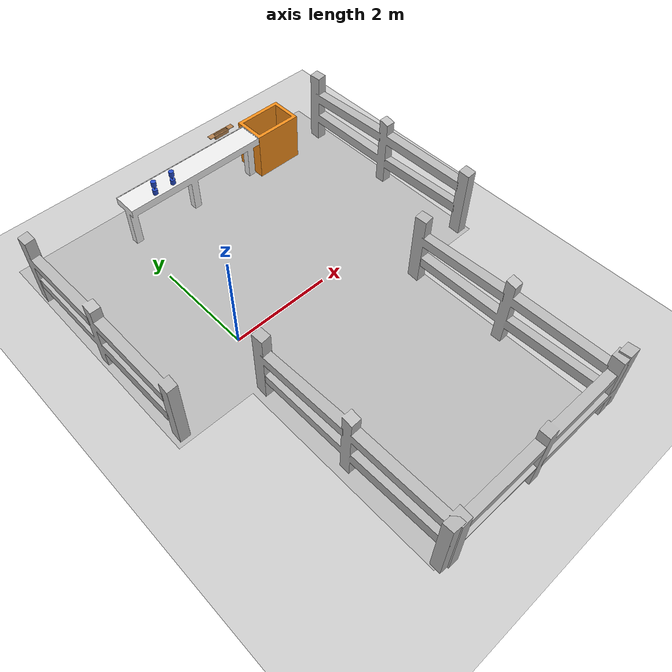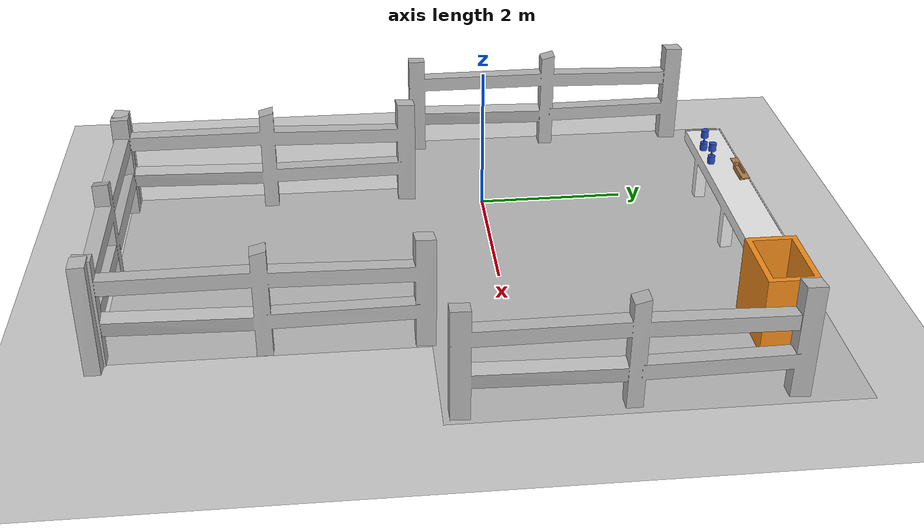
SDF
<sdf version="1.6">
 <world name="default">
  <max_step_size>0.001</max_step_size>
  <real_time_update_rate>1000</real_time_update_rate>
  <iters>50</iters>
  <scene>
   <sky><clouds><speed>12</speed></clouds></sky>
   <grid>false</grid>
   <origin_visual>false</origin_visual>
  </scene>
  <include><uri>model://sun</uri></include>
  <include><uri>model://ground_plane</uri></include>
  <physics type="ode">
   <max_step_size>0.001</max_step_size>
   <real_time_factor>1</real_time_factor>
   <real_time_update_rate>1000.0</real_time_update_rate>
   <gravity>0 0 -9.8</gravity>
   <solver><iters>500</iters><sor>1.3</sor></solver>
   <constraints><cfm>0.0</cfm><erp>0.2</erp></constraints>
  </physics>
  <include><name>Table1</name><uri>model://Table</uri><pose>0 2.965688 0 0 0 0</pose></include>
  <include>
   <name>Box_red</name>
   <uri>model://Box_red</uri>
   <pose>3.35089 3.26 -0.09 0 -0 3.14159265359</pose>
  </include>
  <include><name>D1_blue</name><uri>model://D1_blue</uri><pose>0.6 3.02 1.151 0 -0 0</pose></include>
  <include><name>D2_blue</name><uri>model://D1_blue</uri><pose>1.0 3.02 1.151 0 -0 0</pose></include>
  <model name="tray0">
   <static>false</static>
   <pose>2.2 3.02 1.5 0 -0 0</pose>
   <link name="link">
    <inertial>
     <mass>0.2</mass>
     <inertia>
      <ixx>0.00113</ixx>
      <ixy>0.0</ixy>
      <ixz>0.0</ixz>
      <iyy>0.01718</iyy>
      <iyz>0.0</iyz>
      <izz>0.01854</izz>
     </inertia>
    </inertial>
    <visual name="visual">
     <geometry><mesh><uri>model://aidal_moveit_config/meshes/tray.stl</uri></mesh></geometry>
     <material><script><name>Gazebo/Wood</name></script></material>
    </visual>
    <collision name="collision">
     <geometry><mesh><uri>model://aidal_moveit_config/meshes/tray.stl</uri></mesh></geometry>
     <surface>
      <friction><ode><mu>0.8</mu><mu2>0.8</mu2></ode></friction>
      <contact><ode><kp>1e5</kp><kd>1.0</kd><max_vel>0.1</max_vel><min_depth>0.001</min_depth></ode></contact>
     </surface>
    </collision>
   </link>
  </model>
  <include><name>floor</name><uri>model://floor</uri><pose>3 3 4.503 -1.57079632679 0 0</pose></include>
  <include><name>fence1</name><uri>model://fence</uri><pose>3.695756 -4.926656 0 0 0 -1.950725</pose></include>
  <include><name>fence2</name><uri>model://fence</uri><pose>-0.367325 -0.953713 0 0 0 -0.361621</pose></include>
  <include><name>fence3</name><uri>model://fence</uri><pose>3.286430 -0.953713 0 0 0 -0.361621</pose></include>
  <include><name>fence4</name><uri>model://fence</uri><pose>-1.954880 3.245640 0 0 0 -0.361621</pose></include>
  <include><name>fence5</name><uri>model://fence</uri><pose>4.694280 3.245640 0 0 0 -0.361621</pose></include>
 </world>
</sdf>

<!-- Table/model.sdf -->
<sdf version="1.6">
  <model name="Table">
  <static>true</static>
  <pose>0 0 0 0 0 0</pose>
    <link name="Table">
      <pose>0 0 0 0 0 0</pose>
      <visual name="Table_visual">
        <geometry><mesh><uri>model://Table/meshes/Table.stl</uri></mesh></geometry>
        <material>
        <script>
          <uri>file://media/materials/scripts/gazebo.material</uri>
          <name>Gazebo/White</name>
        </script>
        </material>
      </visual>
      <collision name="Table_collision">
        <geometry><mesh><uri>model://Table/meshes/Table.stl</uri></mesh></geometry>
      </collision>
    </link>

  </model>
</sdf>

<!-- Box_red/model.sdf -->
<sdf version="1.7">
  <model name="Box_red">
  <static>true</static>
  <pose>0 0 0 0 0 0</pose>
    <link name="Box_red">
      <pose>0 0 0 0 0 0</pose>
      <visual name="Box_red_visual">
        <geometry><mesh><uri>model://Box_red/meshes/Box.stl</uri></mesh></geometry>
        <material>
        <script>
          <uri>file://media/materials/scripts/gazebo.material</uri>
          <name>Gazebo/Orange</name>
        </script>
        </material>
      </visual>
      <collision name="Box_red_collision">
        <geometry><mesh><uri>model://Box_red/meshes/Box.stl</uri></mesh></geometry>
      </collision>
    </link>

  </model>
</sdf>

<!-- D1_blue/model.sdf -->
<sdf version="1.6">
  <model name="D1_blue">
  <pose>0 0 0 0 0 0</pose>
    <link name="D1_blue">
      <pose>0 0 0 0 0 0</pose>
      <visual name="D1_blue_visual">
        <geometry><mesh><uri>model://D1_blue/meshes/D1.stl</uri></mesh></geometry>
        <material>
        <script>
          <uri>file://media/materials/scripts/gazebo.material</uri>
          <name>Gazebo/Blue</name>
        </script>
        </material>
      </visual>
      <collision name="D1_blue_collision">

        <geometry><mesh><uri>model://D1_blue/meshes/D1.stl</uri></mesh></geometry>

        <!-- fix -->

        <surface>

          <!-- fix -->
          <contact>
            <ode>
              <kp>5e5</kp>
              <kd>200</kd>
              <max_vel>0.01</max_vel>
              <min_depth>0.002</min_depth>
            </ode>
          </contact>

          <friction>

            <!-- fix -->
            <ode>
              <mu>10.0</mu>
              <mu2>10.0</mu2>
              <slip1>0.01</slip1>
              <slip2>0.01</slip2>
            </ode>

          </friction>
        </surface>
      </collision>
      <inertial>
        <mass>1</mass>

        <!-- とりあえず動かす用の“仮”慣性（後で詰める） -->
        <inertia>
          <ixx>0.01</ixx>
          <iyy>0.01</iyy>
          <izz>0.01</izz>
          <ixy>0.0</ixy>
          <ixz>0.0</ixz>
          <iyz>0.0</iyz>
        </inertia>
      </inertial>
    </link>

  </model>
</sdf>

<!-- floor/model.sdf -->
<sdf version="1.6">
  <model name="floor">
  <pose>0 0 0 -1.57079632679 0 0</pose>
  <static>true</static>
    <link name="floor">
      <pose>0 0 0 0 0 0</pose>

      <!-- fix -->
      <collision name="collision">
        <geometry>
          <mesh>
            <uri>model://floor/meshes/floor.dae</uri>
          </mesh>
        </geometry>
        <surface>
          <friction>
            <ode>
              <mu>10.0</mu>
              <mu2>10.0</mu2>
            </ode>
          </friction>
        </surface>
      </collision>

      <visual name="floor_visual">
        <geometry><mesh><uri>model://floor/meshes/floor.dae</uri></mesh></geometry>
        </visual>
      </link>

  </model>
</sdf>

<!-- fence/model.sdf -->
<sdf version="1.6">
  <model name="fence">
  <pose>0 0 0 0 0 0</pose>
  <static>true</static>
    <link name="fence">
      <pose>0 0 0 0 0 0</pose>
      <visual name="fence_visual">
        <geometry><mesh><uri>model://fence/meshes/fence.dae</uri></mesh></geometry>
        </visual>
      <collision name="fence_collision">
        <geometry><mesh><uri>model://fence/meshes/fence.dae</uri></mesh></geometry>
      </collision>
      </link>

  </model>
</sdf>
